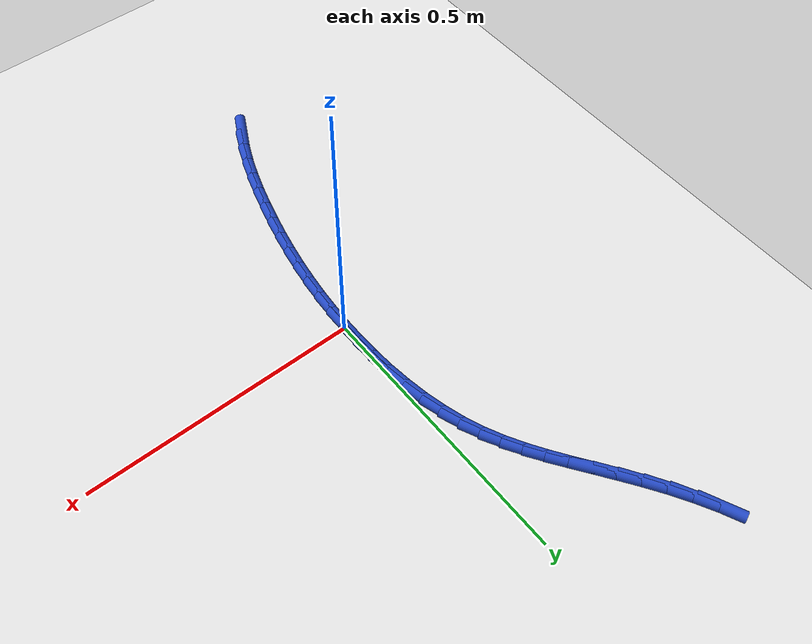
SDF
<sdf version="1.6">
 <world name="default">
  <model name="ground_plane">
   <static>1</static>
   <link name="link">
    <collision name="collision">
     <geometry><plane><normal>0 0 1</normal><size>100 100</size></plane></geometry>
     <surface><friction><ode><mu>100</mu><mu2>50</mu2></ode></friction></surface>
    </collision>
    <visual name="visual">
     <cast_shadows>0</cast_shadows>
     <geometry><plane><normal>0 0 1</normal><size>100 100</size></plane></geometry>
     <material>
      <script><uri>file://media/materials/scripts/gazebo.material</uri><name>Gazebo/WhiteGlow</name></script>
     </material>
    </visual>
   </link>
  </model>
  <model name="line">
   <link name="link_0">
    <pose>-1.3010426069826053e-18 -6.938893903907228e-18 0.01 0 1.57 1.5634827013449681</pose>
    <collision name="collision">
     <geometry><cylinder><radius>0.01</radius><length>0.08</length></cylinder></geometry>
    </collision>
    <visual name="visual">
     <material>
      <script><name>Gazebo/Blue</name><uri>file://media/materials/scripts/gazebo.material</uri></script>
     </material>
     <geometry><cylinder><radius>0.01</radius><length>0.08</length></cylinder></geometry>
    </visual>
   </link>
   <link name="link_1">
    <pose>0.0002860031846336292 0.0391048307328377 0.01 0 1.57 -1.540701349567161</pose>
    <collision name="collision">
     <geometry><cylinder><radius>0.01</radius><length>0.08</length></cylinder></geometry>
    </collision>
    <visual name="visual">
     <material>
      <script><name>Gazebo/Blue</name><uri>file://media/materials/scripts/gazebo.material</uri></script>
     </material>
     <geometry><cylinder><radius>0.01</radius><length>0.08</length></cylinder></geometry>
    </visual>
   </link>
   <link name="link_2">
    <pose>-0.0008977572656325792 0.07842710831524721 0.01 0 1.57 -1.4993874857138636</pose>
    <collision name="collision">
     <geometry><cylinder><radius>0.01</radius><length>0.08</length></cylinder></geometry>
    </collision>
    <visual name="visual">
     <material>
      <script><name>Gazebo/Blue</name><uri>file://media/materials/scripts/gazebo.material</uri></script>
     </material>
     <geometry><cylinder><radius>0.01</radius><length>0.08</length></cylinder></geometry>
    </visual>
   </link>
   <link name="link_3">
    <pose>-0.003704237645874554 0.11766186448842522 0.01 0 1.57 -1.4533707268006342</pose>
    <collision name="collision">
     <geometry><cylinder><radius>0.01</radius><length>0.08</length></cylinder></geometry>
    </collision>
    <visual name="visual">
     <material>
      <script><name>Gazebo/Blue</name><uri>file://media/materials/scripts/gazebo.material</uri></script>
     </material>
     <geometry><cylinder><radius>0.01</radius><length>0.08</length></cylinder></geometry>
    </visual>
   </link>
   <link name="link_4">
    <pose>-0.008286394251168231 0.15650413099356827 0.01 0 1.57 -1.4017394035858466</pose>
    <collision name="collision">
     <geometry><cylinder><radius>0.01</radius><length>0.08</length></cylinder></geometry>
    </collision>
    <visual name="visual">
     <material>
      <script><name>Gazebo/Blue</name><uri>file://media/materials/scripts/gazebo.material</uri></script>
     </material>
     <geometry><cylinder><radius>0.01</radius><length>0.08</length></cylinder></geometry>
    </visual>
   </link>
   <link name="link_5">
    <pose>-0.01479718337658955 0.1946489395718733 0.01 0 1.57 -1.343459234744967</pose>
    <collision name="collision">
     <geometry><cylinder><radius>0.01</radius><length>0.08</length></cylinder></geometry>
    </collision>
    <visual name="visual">
     <material>
      <script><name>Gazebo/Blue</name><uri>file://media/materials/scripts/gazebo.material</uri></script>
     </material>
     <geometry><cylinder><radius>0.01</radius><length>0.08</length></cylinder></geometry>
    </visual>
   </link>
   <link name="link_6">
    <pose>-0.023389561317214435 0.23179132196453678 0.01 0 1.57 -1.2773840416386868</pose>
    <collision name="collision">
     <geometry><cylinder><radius>0.01</radius><length>0.08</length></cylinder></geometry>
    </collision>
    <visual name="visual">
     <material>
      <script><name>Gazebo/Blue</name><uri>file://media/materials/scripts/gazebo.material</uri></script>
     </material>
     <geometry><cylinder><radius>0.01</radius><length>0.08</length></cylinder></geometry>
    </visual>
   </link>
   <link name="link_7">
    <pose>-0.03421648436811882 0.2676263099127556 0.01 0 1.57 -1.2023362966498445</pose>
    <collision name="collision">
     <geometry><cylinder><radius>0.01</radius><length>0.08</length></cylinder></geometry>
    </collision>
    <visual name="visual">
     <material>
      <script><name>Gazebo/Blue</name><uri>file://media/materials/scripts/gazebo.material</uri></script>
     </material>
     <geometry><cylinder><radius>0.01</radius><length>0.08</length></cylinder></geometry>
    </visual>
   </link>
   <link name="link_8">
    <pose>-0.04743005409304305 0.301850147587034 0.01 0 1.57 -1.123769966900324</pose>
    <collision name="collision">
     <geometry><cylinder><radius>0.01</radius><length>0.08</length></cylinder></geometry>
    </collision>
    <visual name="visual">
     <material>
      <script><name>Gazebo/Blue</name><uri>file://media/materials/scripts/gazebo.material</uri></script>
     </material>
     <geometry><cylinder><radius>0.01</radius><length>0.08</length></cylinder></geometry>
    </visual>
   </link>
   <link name="link_9">
    <pose>-0.06302543961726352 0.33438168651976685 0.01 0 1.57 -1.0569096853207514</pose>
    <collision name="collision">
     <geometry><cylinder><radius>0.01</radius><length>0.08</length></cylinder></geometry>
    </collision>
    <visual name="visual">
     <material>
      <script><name>Gazebo/Blue</name><uri>file://media/materials/scripts/gazebo.material</uri></script>
     </material>
     <geometry><cylinder><radius>0.01</radius><length>0.08</length></cylinder></geometry>
    </visual>
   </link>
   <link name="link_10">
    <pose>-0.08065890200132704 0.36562051652124256 0.01 0 1.57 -1.0056401886785002</pose>
    <collision name="collision">
     <geometry><cylinder><radius>0.01</radius><length>0.08</length></cylinder></geometry>
    </collision>
    <visual name="visual">
     <material>
      <script><name>Gazebo/Blue</name><uri>file://media/materials/scripts/gazebo.material</uri></script>
     </material>
     <geometry><cylinder><radius>0.01</radius><length>0.08</length></cylinder></geometry>
    </visual>
   </link>
   <link name="link_11">
    <pose>-0.09994253710456295 0.3960288753732363 0.01 0 1.57 -0.9709244982020133</pose>
    <collision name="collision">
     <geometry><cylinder><radius>0.01</radius><length>0.08</length></cylinder></geometry>
    </collision>
    <visual name="visual">
     <material>
      <script><name>Gazebo/Blue</name><uri>file://media/materials/scripts/gazebo.material</uri></script>
     </material>
     <geometry><cylinder><radius>0.01</radius><length>0.08</length></cylinder></geometry>
    </visual>
   </link>
   <link name="link_12">
    <pose>-0.12048844078630061 0.4260690008575235 0.01 0 1.57 -0.9528382846766015</pose>
    <collision name="collision">
     <geometry><cylinder><radius>0.01</radius><length>0.08</length></cylinder></geometry>
    </collision>
    <visual name="visual">
     <material>
      <script><name>Gazebo/Blue</name><uri>file://media/materials/scripts/gazebo.material</uri></script>
     </material>
     <geometry><cylinder><radius>0.01</radius><length>0.08</length></cylinder></geometry>
    </visual>
   </link>
   <link name="link_13">
    <pose>-0.1419087089058696 0.45620313075588026 0.01 0 1.57 -0.9508698138442858</pose>
    <collision name="collision">
     <geometry><cylinder><radius>0.01</radius><length>0.08</length></cylinder></geometry>
    </collision>
    <visual name="visual">
     <material>
      <script><name>Gazebo/Blue</name><uri>file://media/materials/scripts/gazebo.material</uri></script>
     </material>
     <geometry><cylinder><radius>0.01</radius><length>0.08</length></cylinder></geometry>
    </visual>
   </link>
   <link name="link_14">
    <pose>-0.16381543732259932 0.48689350285008187 0.01 0 1.57 -0.9641225910992269</pose>
    <collision name="collision">
     <geometry><cylinder><radius>0.01</radius><length>0.08</length></cylinder></geometry>
    </collision>
    <visual name="visual">
     <material>
      <script><name>Gazebo/Blue</name><uri>file://media/materials/scripts/gazebo.material</uri></script>
     </material>
     <geometry><cylinder><radius>0.01</radius><length>0.08</length></cylinder></geometry>
    </visual>
   </link>
   <link name="link_15">
    <pose>-0.1858207218958191 0.5186023549219038 0.01 0 1.57 -0.9914041739318887</pose>
    <collision name="collision">
     <geometry><cylinder><radius>0.01</radius><length>0.08</length></cylinder></geometry>
    </collision>
    <visual name="visual">
     <material>
      <script><name>Gazebo/Blue</name><uri>file://media/materials/scripts/gazebo.material</uri></script>
     </material>
     <geometry><cylinder><radius>0.01</radius><length>0.08</length></cylinder></geometry>
    </visual>
   </link>
   <link name="link_16">
    <pose>-0.2075366584848584 0.5517919247531216 0.01 0 1.57 -1.0312318180430817</pose>
    <collision name="collision">
     <geometry><cylinder><radius>0.01</radius><length>0.08</length></cylinder></geometry>
    </collision>
    <visual name="visual">
     <material>
      <script><name>Gazebo/Blue</name><uri>file://media/materials/scripts/gazebo.material</uri></script>
     </material>
     <geometry><cylinder><radius>0.01</radius><length>0.08</length></cylinder></geometry>
    </visual>
   </link>
   <link name="link_17">
    <pose>-0.22857534294904663 0.5869244501255109 0.01 0 1.57 -1.0818057605773006</pose>
    <collision name="collision">
     <geometry><cylinder><radius>0.01</radius><length>0.08</length></cylinder></geometry>
    </collision>
    <visual name="visual">
     <material>
      <script><name>Gazebo/Blue</name><uri>file://media/materials/scripts/gazebo.material</uri></script>
     </material>
     <geometry><cylinder><radius>0.01</radius><length>0.08</length></cylinder></geometry>
    </visual>
   </link>
   <link name="link_18">
    <pose>-0.2485488711477133 0.6244621688208473 0.01 0 1.57 -1.1405402441898806</pose>
    <collision name="collision">
     <geometry><cylinder><radius>0.01</radius><length>0.08</length></cylinder></geometry>
    </collision>
    <visual name="visual">
     <material>
      <script><name>Gazebo/Blue</name><uri>file://media/materials/scripts/gazebo.material</uri></script>
     </material>
     <geometry><cylinder><radius>0.01</radius><length>0.08</length></cylinder></geometry>
    </visual>
   </link>
   <link name="link_197">
    <pose>-0.1166450303398314 -0.48502887581124315 0.01 0 1.57 1.09372225199636</pose>
    <collision name="collision">
     <geometry><cylinder><radius>0.01</radius><length>0.08</length></cylinder></geometry>
    </collision>
    <visual name="visual">
     <material>
      <script><name>Gazebo/Blue</name><uri>file://media/materials/scripts/gazebo.material</uri></script>
     </material>
     <geometry><cylinder><radius>0.01</radius><length>0.08</length></cylinder></geometry>
    </visual>
   </link>
   <link name="link_198">
    <pose>-0.09894352901492502 -0.4507832078868262 0.01 0 1.57 1.1595420169724227</pose>
    <collision name="collision">
     <geometry><cylinder><radius>0.01</radius><length>0.08</length></cylinder></geometry>
    </collision>
    <visual name="visual">
     <material>
      <script><name>Gazebo/Blue</name><uri>file://media/materials/scripts/gazebo.material</uri></script>
     </material>
     <geometry><cylinder><radius>0.01</radius><length>0.08</length></cylinder></geometry>
    </visual>
   </link>
   <link name="link_199">
    <pose>-0.08334441610194848 -0.4150155388026491 0.01 0 1.57 1.2137339217480485</pose>
    <collision name="collision">
     <geometry><cylinder><radius>0.01</radius><length>0.08</length></cylinder></geometry>
    </collision>
    <visual name="visual">
     <material>
      <script><name>Gazebo/Blue</name><uri>file://media/materials/scripts/gazebo.material</uri></script>
     </material>
     <geometry><cylinder><radius>0.01</radius><length>0.08</length></cylinder></geometry>
    </visual>
   </link>
   <link name="link_200">
    <pose>-0.06958919679060045 -0.37814349025465344 0.01 0 1.57 1.2574506715028073</pose>
    <collision name="collision">
     <geometry><cylinder><radius>0.01</radius><length>0.08</length></cylinder></geometry>
    </collision>
    <visual name="visual">
     <material>
      <script><name>Gazebo/Blue</name><uri>file://media/materials/scripts/gazebo.material</uri></script>
     </material>
     <geometry><cylinder><radius>0.01</radius><length>0.08</length></cylinder></geometry>
    </visual>
   </link>
   <link name="link_201">
    <pose>-0.057419376270579706 -0.34058468393878066 0.01 0 1.57 1.2916431013365002</pose>
    <collision name="collision">
     <geometry><cylinder><radius>0.01</radius><length>0.08</length></cylinder></geometry>
    </collision>
    <visual name="visual">
     <material>
      <script><name>Gazebo/Blue</name><uri>file://media/materials/scripts/gazebo.material</uri></script>
     </material>
     <geometry><cylinder><radius>0.01</radius><length>0.08</length></cylinder></geometry>
    </visual>
   </link>
   <link name="link_202">
    <pose>-0.04657645973158468 -0.3027567415509714 0.01 0 1.57 1.317853466886331</pose>
    <collision name="collision">
     <geometry><cylinder><radius>0.01</radius><length>0.08</length></cylinder></geometry>
    </collision>
    <visual name="visual">
     <material>
      <script><name>Gazebo/Blue</name><uri>file://media/materials/scripts/gazebo.material</uri></script>
     </material>
     <geometry><cylinder><radius>0.01</radius><length>0.08</length></cylinder></geometry>
    </visual>
   </link>
   <link name="link_203">
    <pose>-0.036826238326850606 -0.26503522207938346 0.01 0 1.57 1.3430587304102297</pose>
    <collision name="collision">
     <geometry><cylinder><radius>0.01</radius><length>0.08</length></cylinder></geometry>
    </collision>
    <visual name="visual">
     <material>
      <script><name>Gazebo/Blue</name><uri>file://media/materials/scripts/gazebo.material</uri></script>
     </material>
     <geometry><cylinder><radius>0.01</radius><length>0.08</length></cylinder></geometry>
    </visual>
   </link>
   <link name="link_204">
    <pose>-0.02812086506635044 -0.22747291023514296 0.01 0 1.57 1.3702714254118884</pose>
    <collision name="collision">
     <geometry><cylinder><radius>0.01</radius><length>0.08</length></cylinder></geometry>
    </collision>
    <visual name="visual">
     <material>
      <script><name>Gazebo/Blue</name><uri>file://media/materials/scripts/gazebo.material</uri></script>
     </material>
     <geometry><cylinder><radius>0.01</radius><length>0.08</length></cylinder></geometry>
    </visual>
   </link>
   <link name="link_205">
    <pose>-0.020498788400202653 -0.18997312909172578 0.01 0 1.57 1.3993275964825698</pose>
    <collision name="collision">
     <geometry><cylinder><radius>0.01</radius><length>0.08</length></cylinder></geometry>
    </collision>
    <visual name="visual">
     <material>
      <script><name>Gazebo/Blue</name><uri>file://media/materials/scripts/gazebo.material</uri></script>
     </material>
     <geometry><cylinder><radius>0.01</radius><length>0.08</length></cylinder></geometry>
    </visual>
   </link>
   <link name="link_206">
    <pose>-0.013998926785985842 -0.15243838768093235 0.01 0 1.57 1.4299999629092524</pose>
    <collision name="collision">
     <geometry><cylinder><radius>0.01</radius><length>0.08</length></cylinder></geometry>
    </collision>
    <visual name="visual">
     <material>
      <script><name>Gazebo/Blue</name><uri>file://media/materials/scripts/gazebo.material</uri></script>
     </material>
     <geometry><cylinder><radius>0.01</radius><length>0.08</length></cylinder></geometry>
    </visual>
   </link>
   <link name="link_207">
    <pose>-0.008660198681278581 -0.11477119503456273 0.01 0 1.57 1.4620192464442143</pose>
    <collision name="collision">
     <geometry><cylinder><radius>0.01</radius><length>0.08</length></cylinder></geometry>
    </collision>
    <visual name="visual">
     <material>
      <script><name>Gazebo/Blue</name><uri>file://media/materials/scripts/gazebo.material</uri></script>
     </material>
     <geometry><cylinder><radius>0.01</radius><length>0.08</length></cylinder></geometry>
    </visual>
   </link>
   <link name="link_208">
    <pose>-0.004521522543659461 -0.07687406018441728 0.01 0 1.57 1.4950816051440179</pose>
    <collision name="collision">
     <geometry><cylinder><radius>0.01</radius><length>0.08</length></cylinder></geometry>
    </collision>
    <visual name="visual">
     <material>
      <script><name>Gazebo/Blue</name><uri>file://media/materials/scripts/gazebo.material</uri></script>
     </material>
     <geometry><cylinder><radius>0.01</radius><length>0.08</length></cylinder></geometry>
    </visual>
   </link>
   <link name="link_209">
    <pose>-0.0016218168307070117 -0.03864949216229533 0.01 0 1.57 1.5288587531565963</pose>
    <collision name="collision">
     <geometry><cylinder><radius>0.01</radius><length>0.08</length></cylinder></geometry>
    </collision>
    <visual name="visual">
     <material>
      <script><name>Gazebo/Blue</name><uri>file://media/materials/scripts/gazebo.material</uri></script>
     </material>
     <geometry><cylinder><radius>0.01</radius><length>0.08</length></cylinder></geometry>
    </visual>
   </link>
   <link name="link_210">
    <pose>1.6479873021779667e-17 1.457167719820518e-16 0.01 0 1.57 1.563010049631923</pose>
    <collision name="collision">
     <geometry><cylinder><radius>0.01</radius><length>0.08</length></cylinder></geometry>
    </collision>
    <visual name="visual">
     <material>
      <script><name>Gazebo/Blue</name><uri>file://media/materials/scripts/gazebo.material</uri></script>
     </material>
     <geometry><cylinder><radius>0.01</radius><length>0.08</length></cylinder></geometry>
    </visual>
   </link>
   <link name="link_211">
    <pose>0.0003050094908832058 0.03917190727067157 0.01 0 1.57 -1.5443971225587352</pose>
    <collision name="collision">
     <geometry><cylinder><radius>0.01</radius><length>0.08</length></cylinder></geometry>
    </collision>
    <visual name="visual">
     <material>
      <script><name>Gazebo/Blue</name><uri>file://media/materials/scripts/gazebo.material</uri></script>
     </material>
     <geometry><cylinder><radius>0.01</radius><length>0.08</length></cylinder></geometry>
    </visual>
   </link>
   <link name="link_212">
    <pose>-0.0007457068156361719 0.07896372061791966 0.01 0 1.57 -1.5613529438980744</pose>
    <collision name="collision">
     <geometry><cylinder><radius>0.01</radius><length>0.08</length></cylinder></geometry>
    </collision>
    <visual name="visual">
     <material>
      <script><name>Gazebo/Blue</name><uri>file://media/materials/scripts/gazebo.material</uri></script>
     </material>
     <geometry><cylinder><radius>0.01</radius><length>0.08</length></cylinder></geometry>
    </visual>
   </link>
  </model>
 </world>
</sdf>
